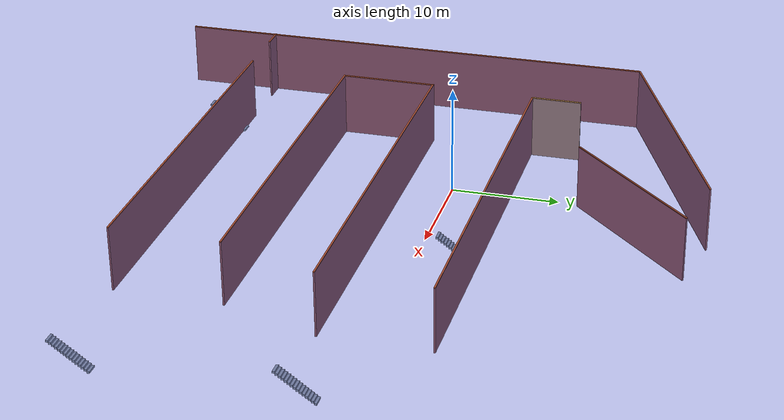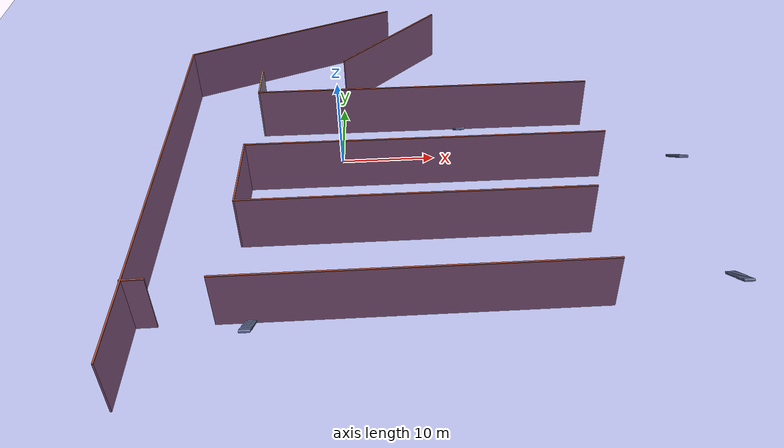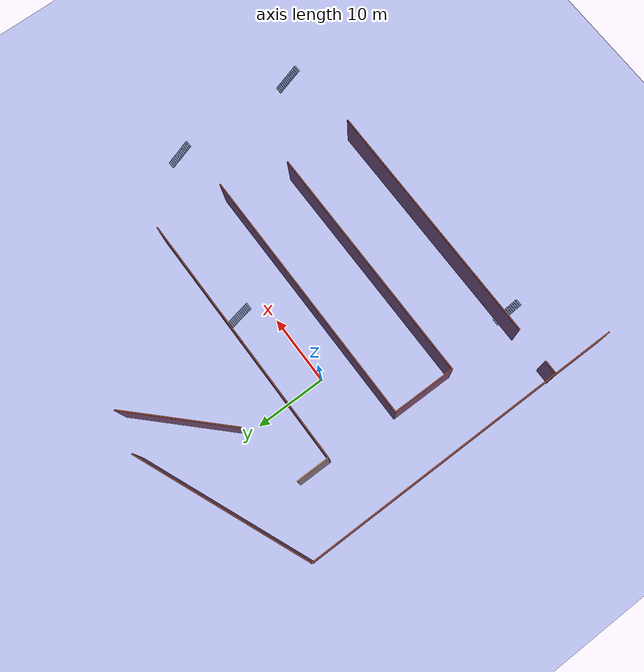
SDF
<sdf version="1.6">
 <world name="vrc_task_1">
  <model name="indoor2">
   <pose>9.73091 -3.78901 0 0 -0 0</pose>
   <link name="Stairs_1">
    <visual name="Stairs_1_Visual_0">
     <pose>-17.3524 -19.1277 0.083333 0 -0 0</pose>
     <geometry><box><size>1 0.233333 0.166667</size></box></geometry>
     <material>
      <script><uri>file://media/materials/scripts/gazebo.material</uri><name>Gazebo/Grey</name></script>
      <ambient>1 1 1 1</ambient>
     </material>
     <meta><layer>0</layer></meta>
    </visual>
    <collision name="Stairs_1_Collision_0">
     <geometry><box><size>1 0.233333 0.166667</size></box></geometry>
     <pose>-17.3524 -19.1277 0.083333 0 -0 0</pose>
    </collision>
    <visual name="Stairs_1_Visual_1">
     <pose>-17.3524 -19.361 0.25 0 -0 0</pose>
     <geometry><box><size>1 0.233333 0.166667</size></box></geometry>
     <material>
      <script><uri>file://media/materials/scripts/gazebo.material</uri><name>Gazebo/Grey</name></script>
      <ambient>1 1 1 1</ambient>
     </material>
     <meta><layer>0</layer></meta>
    </visual>
    <collision name="Stairs_1_Collision_1">
     <geometry><box><size>1 0.233333 0.166667</size></box></geometry>
     <pose>-17.3524 -19.361 0.25 0 -0 0</pose>
    </collision>
    <visual name="Stairs_1_Visual_2">
     <pose>-17.3524 -19.5943 0.416667 0 -0 0</pose>
     <geometry><box><size>1 0.233333 0.166667</size></box></geometry>
     <material>
      <script><uri>file://media/materials/scripts/gazebo.material</uri><name>Gazebo/Grey</name></script>
      <ambient>1 1 1 1</ambient>
     </material>
     <meta><layer>0</layer></meta>
    </visual>
    <collision name="Stairs_1_Collision_2">
     <geometry><box><size>1 0.233333 0.166667</size></box></geometry>
     <pose>-17.3524 -19.5943 0.416667 0 -0 0</pose>
    </collision>
    <visual name="Stairs_1_Visual_3">
     <pose>-17.3524 -19.8277 0.583333 0 -0 0</pose>
     <geometry><box><size>1 0.233333 0.166667</size></box></geometry>
     <material>
      <script><uri>file://media/materials/scripts/gazebo.material</uri><name>Gazebo/Grey</name></script>
      <ambient>1 1 1 1</ambient>
     </material>
     <meta><layer>0</layer></meta>
    </visual>
    <collision name="Stairs_1_Collision_3">
     <geometry><box><size>1 0.233333 0.166667</size></box></geometry>
     <pose>-17.3524 -19.8277 0.583333 0 -0 0</pose>
    </collision>
    <visual name="Stairs_1_Visual_4">
     <pose>-17.3524 -20.061 0.75 0 -0 0</pose>
     <geometry><box><size>1 0.233333 0.166667</size></box></geometry>
     <material>
      <script><uri>file://media/materials/scripts/gazebo.material</uri><name>Gazebo/Grey</name></script>
      <ambient>1 1 1 1</ambient>
     </material>
     <meta><layer>0</layer></meta>
    </visual>
    <collision name="Stairs_1_Collision_4">
     <geometry><box><size>1 0.233333 0.166667</size></box></geometry>
     <pose>-17.3524 -20.061 0.75 0 -0 0</pose>
    </collision>
    <visual name="Stairs_1_Visual_5">
     <pose>-17.3524 -20.2943 0.916667 0 -0 0</pose>
     <geometry><box><size>1 0.233333 0.166667</size></box></geometry>
     <material>
      <script><uri>file://media/materials/scripts/gazebo.material</uri><name>Gazebo/Grey</name></script>
      <ambient>1 1 1 1</ambient>
     </material>
     <meta><layer>0</layer></meta>
    </visual>
    <collision name="Stairs_1_Collision_5">
     <geometry><box><size>1 0.233333 0.166667</size></box></geometry>
     <pose>-17.3524 -20.2943 0.916667 0 -0 0</pose>
    </collision>
    <visual name="Stairs_1_Visual_6">
     <pose>-17.3524 -20.5277 1.08333 0 -0 0</pose>
     <geometry><box><size>1 0.233333 0.166667</size></box></geometry>
     <material>
      <script><uri>file://media/materials/scripts/gazebo.material</uri><name>Gazebo/Grey</name></script>
      <ambient>1 1 1 1</ambient>
     </material>
     <meta><layer>0</layer></meta>
    </visual>
    <collision name="Stairs_1_Collision_6">
     <geometry><box><size>1 0.233333 0.166667</size></box></geometry>
     <pose>-17.3524 -20.5277 1.08333 0 -0 0</pose>
    </collision>
    <visual name="Stairs_1_Visual_7">
     <pose>-17.3524 -20.761 1.25 0 -0 0</pose>
     <geometry><box><size>1 0.233333 0.166667</size></box></geometry>
     <material>
      <script><uri>file://media/materials/scripts/gazebo.material</uri><name>Gazebo/Grey</name></script>
      <ambient>1 1 1 1</ambient>
     </material>
     <meta><layer>0</layer></meta>
    </visual>
    <collision name="Stairs_1_Collision_7">
     <geometry><box><size>1 0.233333 0.166667</size></box></geometry>
     <pose>-17.3524 -20.761 1.25 0 -0 0</pose>
    </collision>
    <visual name="Stairs_1_Visual_8">
     <pose>-17.3524 -20.9943 1.41667 0 -0 0</pose>
     <geometry><box><size>1 0.233333 0.166667</size></box></geometry>
     <material>
      <script><uri>file://media/materials/scripts/gazebo.material</uri><name>Gazebo/Grey</name></script>
      <ambient>1 1 1 1</ambient>
     </material>
     <meta><layer>0</layer></meta>
    </visual>
    <collision name="Stairs_1_Collision_8">
     <geometry><box><size>1 0.233333 0.166667</size></box></geometry>
     <pose>-17.3524 -20.9943 1.41667 0 -0 0</pose>
    </collision>
    <visual name="Stairs_1_Visual_9">
     <pose>-17.3524 -21.2277 1.58333 0 -0 0</pose>
     <geometry><box><size>1 0.233333 0.166667</size></box></geometry>
     <material>
      <script><uri>file://media/materials/scripts/gazebo.material</uri><name>Gazebo/Grey</name></script>
      <ambient>1 1 1 1</ambient>
     </material>
     <meta><layer>0</layer></meta>
    </visual>
    <collision name="Stairs_1_Collision_9">
     <geometry><box><size>1 0.233333 0.166667</size></box></geometry>
     <pose>-17.3524 -21.2277 1.58333 0 -0 0</pose>
    </collision>
    <visual name="Stairs_1_Visual_10">
     <pose>-17.3524 -21.461 1.75 0 -0 0</pose>
     <geometry><box><size>1 0.233333 0.166667</size></box></geometry>
     <material>
      <script><uri>file://media/materials/scripts/gazebo.material</uri><name>Gazebo/Grey</name></script>
      <ambient>1 1 1 1</ambient>
     </material>
     <meta><layer>0</layer></meta>
    </visual>
    <collision name="Stairs_1_Collision_10">
     <geometry><box><size>1 0.233333 0.166667</size></box></geometry>
     <pose>-17.3524 -21.461 1.75 0 -0 0</pose>
    </collision>
    <visual name="Stairs_1_Visual_11">
     <pose>-17.3524 -21.6943 1.91667 0 -0 0</pose>
     <geometry><box><size>1 0.233333 0.166667</size></box></geometry>
     <material>
      <script><uri>file://media/materials/scripts/gazebo.material</uri><name>Gazebo/Grey</name></script>
      <ambient>1 1 1 1</ambient>
     </material>
     <meta><layer>0</layer></meta>
    </visual>
    <collision name="Stairs_1_Collision_11">
     <geometry><box><size>1 0.233333 0.166667</size></box></geometry>
     <pose>-17.3524 -21.6943 1.91667 0 -0 0</pose>
    </collision>
    <visual name="Stairs_1_Visual_12">
     <pose>-17.3524 -21.9277 2.08333 0 -0 0</pose>
     <geometry><box><size>1 0.233333 0.166667</size></box></geometry>
     <material>
      <script><uri>file://media/materials/scripts/gazebo.material</uri><name>Gazebo/Grey</name></script>
      <ambient>1 1 1 1</ambient>
     </material>
     <meta><layer>0</layer></meta>
    </visual>
    <collision name="Stairs_1_Collision_12">
     <geometry><box><size>1 0.233333 0.166667</size></box></geometry>
     <pose>-17.3524 -21.9277 2.08333 0 -0 0</pose>
    </collision>
    <visual name="Stairs_1_Visual_13">
     <pose>-17.3524 -22.161 2.25 0 -0 0</pose>
     <geometry><box><size>1 0.233333 0.166667</size></box></geometry>
     <material>
      <script><uri>file://media/materials/scripts/gazebo.material</uri><name>Gazebo/Grey</name></script>
      <ambient>1 1 1 1</ambient>
     </material>
     <meta><layer>0</layer></meta>
    </visual>
    <collision name="Stairs_1_Collision_13">
     <geometry><box><size>1 0.233333 0.166667</size></box></geometry>
     <pose>-17.3524 -22.161 2.25 0 -0 0</pose>
    </collision>
    <visual name="Stairs_1_Visual_14">
     <pose>-17.3524 -22.3943 2.41667 0 -0 0</pose>
     <geometry><box><size>1 0.233333 0.166667</size></box></geometry>
     <material>
      <script><uri>file://media/materials/scripts/gazebo.material</uri><name>Gazebo/Grey</name></script>
      <ambient>1 1 1 1</ambient>
     </material>
     <meta><layer>0</layer></meta>
    </visual>
    <collision name="Stairs_1_Collision_14">
     <geometry><box><size>1 0.233333 0.166667</size></box></geometry>
     <pose>-17.3524 -22.3943 2.41667 0 -0 0</pose>
    </collision>
   </link>
   <link name="Stairs_2">
    <visual name="Stairs_2_Visual_0">
     <pose>27.1992 -16.0338 0.083333 0 -0 0</pose>
     <geometry><box><size>1 0.233333 0.166667</size></box></geometry>
     <material>
      <script><uri>file://media/materials/scripts/gazebo.material</uri><name>Gazebo/Grey</name></script>
      <ambient>1 1 1 1</ambient>
     </material>
     <meta><layer>0</layer></meta>
    </visual>
    <collision name="Stairs_2_Collision_0">
     <geometry><box><size>1 0.233333 0.166667</size></box></geometry>
     <pose>27.1992 -16.0338 0.083333 0 -0 0</pose>
    </collision>
    <visual name="Stairs_2_Visual_1">
     <pose>27.1992 -16.2671 0.25 0 -0 0</pose>
     <geometry><box><size>1 0.233333 0.166667</size></box></geometry>
     <material>
      <script><uri>file://media/materials/scripts/gazebo.material</uri><name>Gazebo/Grey</name></script>
      <ambient>1 1 1 1</ambient>
     </material>
     <meta><layer>0</layer></meta>
    </visual>
    <collision name="Stairs_2_Collision_1">
     <geometry><box><size>1 0.233333 0.166667</size></box></geometry>
     <pose>27.1992 -16.2671 0.25 0 -0 0</pose>
    </collision>
    <visual name="Stairs_2_Visual_2">
     <pose>27.1992 -16.5005 0.416667 0 -0 0</pose>
     <geometry><box><size>1 0.233333 0.166667</size></box></geometry>
     <material>
      <script><uri>file://media/materials/scripts/gazebo.material</uri><name>Gazebo/Grey</name></script>
      <ambient>1 1 1 1</ambient>
     </material>
     <meta><layer>0</layer></meta>
    </visual>
    <collision name="Stairs_2_Collision_2">
     <geometry><box><size>1 0.233333 0.166667</size></box></geometry>
     <pose>27.1992 -16.5005 0.416667 0 -0 0</pose>
    </collision>
    <visual name="Stairs_2_Visual_3">
     <pose>27.1992 -16.7338 0.583333 0 -0 0</pose>
     <geometry><box><size>1 0.233333 0.166667</size></box></geometry>
     <material>
      <script><uri>file://media/materials/scripts/gazebo.material</uri><name>Gazebo/Grey</name></script>
      <ambient>1 1 1 1</ambient>
     </material>
     <meta><layer>0</layer></meta>
    </visual>
    <collision name="Stairs_2_Collision_3">
     <geometry><box><size>1 0.233333 0.166667</size></box></geometry>
     <pose>27.1992 -16.7338 0.583333 0 -0 0</pose>
    </collision>
    <visual name="Stairs_2_Visual_4">
     <pose>27.1992 -16.9671 0.75 0 -0 0</pose>
     <geometry><box><size>1 0.233333 0.166667</size></box></geometry>
     <material>
      <script><uri>file://media/materials/scripts/gazebo.material</uri><name>Gazebo/Grey</name></script>
      <ambient>1 1 1 1</ambient>
     </material>
     <meta><layer>0</layer></meta>
    </visual>
    <collision name="Stairs_2_Collision_4">
     <geometry><box><size>1 0.233333 0.166667</size></box></geometry>
     <pose>27.1992 -16.9671 0.75 0 -0 0</pose>
    </collision>
    <visual name="Stairs_2_Visual_5">
     <pose>27.1992 -17.2005 0.916667 0 -0 0</pose>
     <geometry><box><size>1 0.233333 0.166667</size></box></geometry>
     <material>
      <script><uri>file://media/materials/scripts/gazebo.material</uri><name>Gazebo/Grey</name></script>
      <ambient>1 1 1 1</ambient>
     </material>
     <meta><layer>0</layer></meta>
    </visual>
    <collision name="Stairs_2_Collision_5">
     <geometry><box><size>1 0.233333 0.166667</size></box></geometry>
     <pose>27.1992 -17.2005 0.916667 0 -0 0</pose>
    </collision>
    <visual name="Stairs_2_Visual_6">
     <pose>27.1992 -17.4338 1.08333 0 -0 0</pose>
     <geometry><box><size>1 0.233333 0.166667</size></box></geometry>
     <material>
      <script><uri>file://media/materials/scripts/gazebo.material</uri><name>Gazebo/Grey</name></script>
      <ambient>1 1 1 1</ambient>
     </material>
     <meta><layer>0</layer></meta>
    </visual>
    <collision name="Stairs_2_Collision_6">
     <geometry><box><size>1 0.233333 0.166667</size></box></geometry>
     <pose>27.1992 -17.4338 1.08333 0 -0 0</pose>
    </collision>
    <visual name="Stairs_2_Visual_7">
     <pose>27.1992 -17.6671 1.25 0 -0 0</pose>
     <geometry><box><size>1 0.233333 0.166667</size></box></geometry>
     <material>
      <script><uri>file://media/materials/scripts/gazebo.material</uri><name>Gazebo/Grey</name></script>
      <ambient>1 1 1 1</ambient>
     </material>
     <meta><layer>0</layer></meta>
    </visual>
    <collision name="Stairs_2_Collision_7">
     <geometry><box><size>1 0.233333 0.166667</size></box></geometry>
     <pose>27.1992 -17.6671 1.25 0 -0 0</pose>
    </collision>
    <visual name="Stairs_2_Visual_8">
     <pose>27.1992 -17.9005 1.41667 0 -0 0</pose>
     <geometry><box><size>1 0.233333 0.166667</size></box></geometry>
     <material>
      <script><uri>file://media/materials/scripts/gazebo.material</uri><name>Gazebo/Grey</name></script>
      <ambient>1 1 1 1</ambient>
     </material>
     <meta><layer>0</layer></meta>
    </visual>
    <collision name="Stairs_2_Collision_8">
     <geometry><box><size>1 0.233333 0.166667</size></box></geometry>
     <pose>27.1992 -17.9005 1.41667 0 -0 0</pose>
    </collision>
    <visual name="Stairs_2_Visual_9">
     <pose>27.1992 -18.1338 1.58333 0 -0 0</pose>
     <geometry><box><size>1 0.233333 0.166667</size></box></geometry>
     <material>
      <script><uri>file://media/materials/scripts/gazebo.material</uri><name>Gazebo/Grey</name></script>
      <ambient>1 1 1 1</ambient>
     </material>
     <meta><layer>0</layer></meta>
    </visual>
    <collision name="Stairs_2_Collision_9">
     <geometry><box><size>1 0.233333 0.166667</size></box></geometry>
     <pose>27.1992 -18.1338 1.58333 0 -0 0</pose>
    </collision>
    <visual name="Stairs_2_Visual_10">
     <pose>27.1992 -18.3671 1.75 0 -0 0</pose>
     <geometry><box><size>1 0.233333 0.166667</size></box></geometry>
     <material>
      <script><uri>file://media/materials/scripts/gazebo.material</uri><name>Gazebo/Grey</name></script>
      <ambient>1 1 1 1</ambient>
     </material>
     <meta><layer>0</layer></meta>
    </visual>
    <collision name="Stairs_2_Collision_10">
     <geometry><box><size>1 0.233333 0.166667</size></box></geometry>
     <pose>27.1992 -18.3671 1.75 0 -0 0</pose>
    </collision>
    <visual name="Stairs_2_Visual_11">
     <pose>27.1992 -18.6005 1.91667 0 -0 0</pose>
     <geometry><box><size>1 0.233333 0.166667</size></box></geometry>
     <material>
      <script><uri>file://media/materials/scripts/gazebo.material</uri><name>Gazebo/Grey</name></script>
      <ambient>1 1 1 1</ambient>
     </material>
     <meta><layer>0</layer></meta>
    </visual>
    <collision name="Stairs_2_Collision_11">
     <geometry><box><size>1 0.233333 0.166667</size></box></geometry>
     <pose>27.1992 -18.6005 1.91667 0 -0 0</pose>
    </collision>
    <visual name="Stairs_2_Visual_12">
     <pose>27.1992 -18.8338 2.08333 0 -0 0</pose>
     <geometry><box><size>1 0.233333 0.166667</size></box></geometry>
     <material>
      <script><uri>file://media/materials/scripts/gazebo.material</uri><name>Gazebo/Grey</name></script>
      <ambient>1 1 1 1</ambient>
     </material>
     <meta><layer>0</layer></meta>
    </visual>
    <collision name="Stairs_2_Collision_12">
     <geometry><box><size>1 0.233333 0.166667</size></box></geometry>
     <pose>27.1992 -18.8338 2.08333 0 -0 0</pose>
    </collision>
    <visual name="Stairs_2_Visual_13">
     <pose>27.1992 -19.0671 2.25 0 -0 0</pose>
     <geometry><box><size>1 0.233333 0.166667</size></box></geometry>
     <material>
      <script><uri>file://media/materials/scripts/gazebo.material</uri><name>Gazebo/Grey</name></script>
      <ambient>1 1 1 1</ambient>
     </material>
     <meta><layer>0</layer></meta>
    </visual>
    <collision name="Stairs_2_Collision_13">
     <geometry><box><size>1 0.233333 0.166667</size></box></geometry>
     <pose>27.1992 -19.0671 2.25 0 -0 0</pose>
    </collision>
    <visual name="Stairs_2_Visual_14">
     <pose>27.1992 -19.3005 2.41667 0 -0 0</pose>
     <geometry><box><size>1 0.233333 0.166667</size></box></geometry>
     <material>
      <script><uri>file://media/materials/scripts/gazebo.material</uri><name>Gazebo/Grey</name></script>
      <ambient>1 1 1 1</ambient>
     </material>
     <meta><layer>0</layer></meta>
    </visual>
    <collision name="Stairs_2_Collision_14">
     <geometry><box><size>1 0.233333 0.166667</size></box></geometry>
     <pose>27.1992 -19.3005 2.41667 0 -0 0</pose>
    </collision>
   </link>
   <link name="Stairs_3">
    <visual name="Stairs_3_Visual_0">
     <pose>26.9517 2.40562 0.083333 0 -0 0</pose>
     <geometry><box><size>1 0.233333 0.166667</size></box></geometry>
     <material>
      <script><uri>file://media/materials/scripts/gazebo.material</uri><name>Gazebo/Grey</name></script>
      <ambient>1 1 1 1</ambient>
     </material>
     <meta><layer>0</layer></meta>
    </visual>
    <collision name="Stairs_3_Collision_0">
     <geometry><box><size>1 0.233333 0.166667</size></box></geometry>
     <pose>26.9517 2.40562 0.083333 0 -0 0</pose>
    </collision>
    <visual name="Stairs_3_Visual_1">
     <pose>26.9517 2.17229 0.25 0 -0 0</pose>
     <geometry><box><size>1 0.233333 0.166667</size></box></geometry>
     <material>
      <script><uri>file://media/materials/scripts/gazebo.material</uri><name>Gazebo/Grey</name></script>
      <ambient>1 1 1 1</ambient>
     </material>
     <meta><layer>0</layer></meta>
    </visual>
    <collision name="Stairs_3_Collision_1">
     <geometry><box><size>1 0.233333 0.166667</size></box></geometry>
     <pose>26.9517 2.17229 0.25 0 -0 0</pose>
    </collision>
    <visual name="Stairs_3_Visual_2">
     <pose>26.9517 1.93895 0.416667 0 -0 0</pose>
     <geometry><box><size>1 0.233333 0.166667</size></box></geometry>
     <material>
      <script><uri>file://media/materials/scripts/gazebo.material</uri><name>Gazebo/Grey</name></script>
      <ambient>1 1 1 1</ambient>
     </material>
     <meta><layer>0</layer></meta>
    </visual>
    <collision name="Stairs_3_Collision_2">
     <geometry><box><size>1 0.233333 0.166667</size></box></geometry>
     <pose>26.9517 1.93895 0.416667 0 -0 0</pose>
    </collision>
    <visual name="Stairs_3_Visual_3">
     <pose>26.9517 1.70562 0.583333 0 -0 0</pose>
     <geometry><box><size>1 0.233333 0.166667</size></box></geometry>
     <material>
      <script><uri>file://media/materials/scripts/gazebo.material</uri><name>Gazebo/Grey</name></script>
      <ambient>1 1 1 1</ambient>
     </material>
     <meta><layer>0</layer></meta>
    </visual>
    <collision name="Stairs_3_Collision_3">
     <geometry><box><size>1 0.233333 0.166667</size></box></geometry>
     <pose>26.9517 1.70562 0.583333 0 -0 0</pose>
    </collision>
    <visual name="Stairs_3_Visual_4">
     <pose>26.9517 1.47229 0.75 0 -0 0</pose>
     <geometry><box><size>1 0.233333 0.166667</size></box></geometry>
     <material>
      <script><uri>file://media/materials/scripts/gazebo.material</uri><name>Gazebo/Grey</name></script>
      <ambient>1 1 1 1</ambient>
     </material>
     <meta><layer>0</layer></meta>
    </visual>
    <collision name="Stairs_3_Collision_4">
     <geometry><box><size>1 0.233333 0.166667</size></box></geometry>
     <pose>26.9517 1.47229 0.75 0 -0 0</pose>
    </collision>
    <visual name="Stairs_3_Visual_5">
     <pose>26.9517 1.23895 0.916667 0 -0 0</pose>
     <geometry><box><size>1 0.233333 0.166667</size></box></geometry>
     <material>
      <script><uri>file://media/materials/scripts/gazebo.material</uri><name>Gazebo/Grey</name></script>
      <ambient>1 1 1 1</ambient>
     </material>
     <meta><layer>0</layer></meta>
    </visual>
    <collision name="Stairs_3_Collision_5">
     <geometry><box><size>1 0.233333 0.166667</size></box></geometry>
     <pose>26.9517 1.23895 0.916667 0 -0 0</pose>
    </collision>
    <visual name="Stairs_3_Visual_6">
     <pose>26.9517 1.00562 1.08333 0 -0 0</pose>
     <geometry><box><size>1 0.233333 0.166667</size></box></geometry>
     <material>
      <script><uri>file://media/materials/scripts/gazebo.material</uri><name>Gazebo/Grey</name></script>
      <ambient>1 1 1 1</ambient>
     </material>
     <meta><layer>0</layer></meta>
    </visual>
    <collision name="Stairs_3_Collision_6">
     <geometry><box><size>1 0.233333 0.166667</size></box></geometry>
     <pose>26.9517 1.00562 1.08333 0 -0 0</pose>
    </collision>
    <visual name="Stairs_3_Visual_7">
     <pose>26.9517 0.772287 1.25 0 -0 0</pose>
     <geometry><box><size>1 0.233333 0.166667</size></box></geometry>
     <material>
      <script><uri>file://media/materials/scripts/gazebo.material</uri><name>Gazebo/Grey</name></script>
      <ambient>1 1 1 1</ambient>
     </material>
     <meta><layer>0</layer></meta>
    </visual>
    <collision name="Stairs_3_Collision_7">
     <geometry><box><size>1 0.233333 0.166667</size></box></geometry>
     <pose>26.9517 0.772287 1.25 0 -0 0</pose>
    </collision>
    <visual name="Stairs_3_Visual_8">
     <pose>26.9517 0.538954 1.41667 0 -0 0</pose>
     <geometry><box><size>1 0.233333 0.166667</size></box></geometry>
     <material>
      <script><uri>file://media/materials/scripts/gazebo.material</uri><name>Gazebo/Grey</name></script>
      <ambient>1 1 1 1</ambient>
     </material>
     <meta><layer>0</layer></meta>
    </visual>
    <collision name="Stairs_3_Collision_8">
     <geometry><box><size>1 0.233333 0.166667</size></box></geometry>
     <pose>26.9517 0.538954 1.41667 0 -0 0</pose>
    </collision>
    <visual name="Stairs_3_Visual_9">
     <pose>26.9517 0.30562 1.58333 0 -0 0</pose>
     <geometry><box><size>1 0.233333 0.166667</size></box></geometry>
     <material>
      <script><uri>file://media/materials/scripts/gazebo.material</uri><name>Gazebo/Grey</name></script>
      <ambient>1 1 1 1</ambient>
     </material>
     <meta><layer>0</layer></meta>
    </visual>
    <collision name="Stairs_3_Collision_9">
     <geometry><box><size>1 0.233333 0.166667</size></box></geometry>
     <pose>26.9517 0.30562 1.58333 0 -0 0</pose>
    </collision>
    <visual name="Stairs_3_Visual_10">
     <pose>26.9517 0.072287 1.75 0 -0 0</pose>
     <geometry><box><size>1 0.233333 0.166667</size></box></geometry>
     <material>
      <script><uri>file://media/materials/scripts/gazebo.material</uri><name>Gazebo/Grey</name></script>
      <ambient>1 1 1 1</ambient>
     </material>
     <meta><layer>0</layer></meta>
    </visual>
    <collision name="Stairs_3_Collision_10">
     <geometry><box><size>1 0.233333 0.166667</size></box></geometry>
     <pose>26.9517 0.072287 1.75 0 -0 0</pose>
    </collision>
    <visual name="Stairs_3_Visual_11">
     <pose>26.9517 -0.161047 1.91667 0 -0 0</pose>
     <geometry><box><size>1 0.233333 0.166667</size></box></geometry>
     <material>
      <script><uri>file://media/materials/scripts/gazebo.material</uri><name>Gazebo/Grey</name></script>
      <ambient>1 1 1 1</ambient>
     </material>
     <meta><layer>0</layer></meta>
    </visual>
    <collision name="Stairs_3_Collision_11">
     <geometry><box><size>1 0.233333 0.166667</size></box></geometry>
     <pose>26.9517 -0.161047 1.91667 0 -0 0</pose>
    </collision>
    <visual name="Stairs_3_Visual_12">
     <pose>26.9517 -0.39438 2.08333 0 -0 0</pose>
     <geometry><box><size>1 0.233333 0.166667</size></box></geometry>
     <material>
      <script><uri>file://media/materials/scripts/gazebo.material</uri><name>Gazebo/Grey</name></script>
      <ambient>1 1 1 1</ambient>
     </material>
     <meta><layer>0</layer></meta>
    </visual>
    <collision name="Stairs_3_Collision_12">
     <geometry><box><size>1 0.233333 0.166667</size></box></geometry>
     <pose>26.9517 -0.39438 2.08333 0 -0 0</pose>
    </collision>
    <visual name="Stairs_3_Visual_13">
     <pose>26.9517 -0.627713 2.25 0 -0 0</pose>
     <geometry><box><size>1 0.233333 0.166667</size></box></geometry>
     <material>
      <script><uri>file://media/materials/scripts/gazebo.material</uri><name>Gazebo/Grey</name></script>
      <ambient>1 1 1 1</ambient>
     </material>
     <meta><layer>0</layer></meta>
    </visual>
    <collision name="Stairs_3_Collision_13">
     <geometry><box><size>1 0.233333 0.166667</size></box></geometry>
     <pose>26.9517 -0.627713 2.25 0 -0 0</pose>
    </collision>
    <visual name="Stairs_3_Visual_14">
     <pose>26.9517 -0.861046 2.41667 0 -0 0</pose>
     <geometry><box><size>1 0.233333 0.166667</size></box></geometry>
     <material>
      <script><uri>file://media/materials/scripts/gazebo.material</uri><name>Gazebo/Grey</name></script>
      <ambient>1 1 1 1</ambient>
     </material>
     <meta><layer>0</layer></meta>
    </visual>
    <collision name="Stairs_3_Collision_14">
     <geometry><box><size>1 0.233333 0.166667</size></box></geometry>
     <pose>26.9517 -0.861046 2.41667 0 -0 0</pose>
    </collision>
   </link>
   <link name="Stairs_4">
    <visual name="Stairs_4_Visual_0">
     <pose>3.43833 9.08836 0.083333 0 -0 0</pose>
     <geometry><box><size>1 0.233333 0.166667</size></box></geometry>
     <material>
      <script><uri>file://media/materials/scripts/gazebo.material</uri><name>Gazebo/Grey</name></script>
      <ambient>1 1 1 1</ambient>
     </material>
     <meta><layer>0</layer></meta>
    </visual>
    <collision name="Stairs_4_Collision_0">
     <geometry><box><size>1 0.233333 0.166667</size></box></geometry>
     <pose>3.43833 9.08836 0.083333 0 -0 0</pose>
    </collision>
    <visual name="Stairs_4_Visual_1">
     <pose>3.43833 8.85503 0.25 0 -0 0</pose>
     <geometry><box><size>1 0.233333 0.166667</size></box></geometry>
     <material>
      <script><uri>file://media/materials/scripts/gazebo.material</uri><name>Gazebo/Grey</name></script>
      <ambient>1 1 1 1</ambient>
     </material>
     <meta><layer>0</layer></meta>
    </visual>
    <collision name="Stairs_4_Collision_1">
     <geometry><box><size>1 0.233333 0.166667</size></box></geometry>
     <pose>3.43833 8.85503 0.25 0 -0 0</pose>
    </collision>
    <visual name="Stairs_4_Visual_2">
     <pose>3.43833 8.6217 0.416667 0 -0 0</pose>
     <geometry><box><size>1 0.233333 0.166667</size></box></geometry>
     <material>
      <script><uri>file://media/materials/scripts/gazebo.material</uri><name>Gazebo/Grey</name></script>
      <ambient>1 1 1 1</ambient>
     </material>
     <meta><layer>0</layer></meta>
    </visual>
    <collision name="Stairs_4_Collision_2">
     <geometry><box><size>1 0.233333 0.166667</size></box></geometry>
     <pose>3.43833 8.6217 0.416667 0 -0 0</pose>
    </collision>
    <visual name="Stairs_4_Visual_3">
     <pose>3.43833 8.38837 0.583333 0 -0 0</pose>
     <geometry><box><size>1 0.233333 0.166667</size></box></geometry>
     <material>
      <script><uri>file://media/materials/scripts/gazebo.material</uri><name>Gazebo/Grey</name></script>
      <ambient>1 1 1 1</ambient>
     </material>
     <meta><layer>0</layer></meta>
    </visual>
    <collision name="Stairs_4_Collision_3">
     <geometry><box><size>1 0.233333 0.166667</size></box></geometry>
     <pose>3.43833 8.38837 0.583333 0 -0 0</pose>
    </collision>
    <visual name="Stairs_4_Visual_4">
     <pose>3.43833 8.15503 0.75 0 -0 0</pose>
     <geometry><box><size>1 0.233333 0.166667</size></box></geometry>
     <material>
      <script><uri>file://media/materials/scripts/gazebo.material</uri><name>Gazebo/Grey</name></script>
      <ambient>1 1 1 1</ambient>
     </material>
     <meta><layer>0</layer></meta>
    </visual>
    <collision name="Stairs_4_Collision_4">
     <geometry><box><size>1 0.233333 0.166667</size></box></geometry>
     <pose>3.43833 8.15503 0.75 0 -0 0</pose>
    </collision>
    <visual name="Stairs_4_Visual_5">
     <pose>3.43833 7.9217 0.916667 0 -0 0</pose>
     <geometry><box><size>1 0.233333 0.166667</size></box></geometry>
     <material>
      <script><uri>file://media/materials/scripts/gazebo.material</uri><name>Gazebo/Grey</name></script>
      <ambient>1 1 1 1</ambient>
     </material>
     <meta><layer>0</layer></meta>
    </visual>
    <collision name="Stairs_4_Collision_5">
     <geometry><box><size>1 0.233333 0.166667</size></box></geometry>
     <pose>3.43833 7.9217 0.916667 0 -0 0</pose>
    </collision>
    <visual name="Stairs_4_Visual_6">
     <pose>3.43833 7.68837 1.08333 0 -0 0</pose>
     <geometry><box><size>1 0.233333 0.166667</size></box></geometry>
     <material>
      <script><uri>file://media/materials/scripts/gazebo.material</uri><name>Gazebo/Grey</name></script>
      <ambient>1 1 1 1</ambient>
     </material>
     <meta><layer>0</layer></meta>
    </visual>
    <collision name="Stairs_4_Collision_6">
     <geometry><box><size>1 0.233333 0.166667</size></box></geometry>
     <pose>3.43833 7.68837 1.08333 0 -0 0</pose>
    </collision>
    <visual name="Stairs_4_Visual_7">
     <pose>3.43833 7.45503 1.25 0 -0 0</pose>
     <geometry><box><size>1 0.233333 0.166667</size></box></geometry>
     <material>
      <script><uri>file://media/materials/scripts/gazebo.material</uri><name>Gazebo/Grey</name></script>
      <ambient>1 1 1 1</ambient>
     </material>
     <meta><layer>0</layer></meta>
    </visual>
    <collision name="Stairs_4_Collision_7">
     <geometry><box><size>1 0.233333 0.166667</size></box></geometry>
     <pose>3.43833 7.45503 1.25 0 -0 0</pose>
    </collision>
    <visual name="Stairs_4_Visual_8">
     <pose>3.43833 7.2217 1.41667 0 -0 0</pose>
     <geometry><box><size>1 0.233333 0.166667</size></box></geometry>
     <material>
      <script><uri>file://media/materials/scripts/gazebo.material</uri><name>Gazebo/Grey</name></script>
      <ambient>1 1 1 1</ambient>
     </material>
     <meta><layer>0</layer></meta>
    </visual>
    <collision name="Stairs_4_Collision_8">
     <geometry><box><size>1 0.233333 0.166667</size></box></geometry>
     <pose>3.43833 7.2217 1.41667 0 -0 0</pose>
    </collision>
    <visual name="Stairs_4_Visual_9">
     <pose>3.43833 6.98836 1.58333 0 -0 0</pose>
     <geometry><box><size>1 0.233333 0.166667</size></box></geometry>
     <material>
      <script><uri>file://media/materials/scripts/gazebo.material</uri><name>Gazebo/Grey</name></script>
      <ambient>1 1 1 1</ambient>
     </material>
     <meta><layer>0</layer></meta>
    </visual>
    <collision name="Stairs_4_Collision_9">
     <geometry><box><size>1 0.233333 0.166667</size></box></geometry>
     <pose>3.43833 6.98836 1.58333 0 -0 0</pose>
    </collision>
    <visual name="Stairs_4_Visual_10">
     <pose>3.43833 6.75503 1.75 0 -0 0</pose>
     <geometry><box><size>1 0.233333 0.166667</size></box></geometry>
     <material>
      <script><uri>file://media/materials/scripts/gazebo.material</uri><name>Gazebo/Grey</name></script>
      <ambient>1 1 1 1</ambient>
     </material>
     <meta><layer>0</layer></meta>
    </visual>
    <collision name="Stairs_4_Collision_10">
     <geometry><box><size>1 0.233333 0.166667</size></box></geometry>
     <pose>3.43833 6.75503 1.75 0 -0 0</pose>
    </collision>
    <visual name="Stairs_4_Visual_11">
     <pose>3.43833 6.5217 1.91667 0 -0 0</pose>
     <geometry><box><size>1 0.233333 0.166667</size></box></geometry>
     <material>
      <script><uri>file://media/materials/scripts/gazebo.material</uri><name>Gazebo/Grey</name></script>
      <ambient>1 1 1 1</ambient>
     </material>
     <meta><layer>0</layer></meta>
    </visual>
    <collision name="Stairs_4_Collision_11">
     <geometry><box><size>1 0.233333 0.166667</size></box></geometry>
     <pose>3.43833 6.5217 1.91667 0 -0 0</pose>
    </collision>
    <visual name="Stairs_4_Visual_12">
     <pose>3.43833 6.28836 2.08333 0 -0 0</pose>
     <geometry><box><size>1 0.233333 0.166667</size></box></geometry>
     <material>
      <script><uri>file://media/materials/scripts/gazebo.material</uri><name>Gazebo/Grey</name></script>
      <ambient>1 1 1 1</ambient>
     </material>
     <meta><layer>0</layer></meta>
    </visual>
    <collision name="Stairs_4_Collision_12">
     <geometry><box><size>1 0.233333 0.166667</size></box></geometry>
     <pose>3.43833 6.28836 2.08333 0 -0 0</pose>
    </collision>
    <visual name="Stairs_4_Visual_13">
     <pose>3.43833 6.05503 2.25 0 -0 0</pose>
     <geometry><box><size>1 0.233333 0.166667</size></box></geometry>
     <material>
      <script><uri>file://media/materials/scripts/gazebo.material</uri><name>Gazebo/Grey</name></script>
      <ambient>1 1 1 1</ambient>
     </material>
     <meta><layer>0</layer></meta>
    </visual>
    <collision name="Stairs_4_Collision_13">
     <geometry><box><size>1 0.233333 0.166667</size></box></geometry>
     <pose>3.43833 6.05503 2.25 0 -0 0</pose>
    </collision>
    <visual name="Stairs_4_Visual_14">
     <pose>3.43833 5.8217 2.41667 0 -0 0</pose>
     <geometry><box><size>1 0.233333 0.166667</size></box></geometry>
     <material>
      <script><uri>file://media/materials/scripts/gazebo.material</uri><name>Gazebo/Grey</name></script>
      <ambient>1 1 1 1</ambient>
     </material>
     <meta><layer>0</layer></meta>
    </visual>
    <collision name="Stairs_4_Collision_14">
     <geometry><box><size>1 0.233333 0.166667</size></box></geometry>
     <pose>3.43833 5.8217 2.41667 0 -0 0</pose>
    </collision>
   </link>
   <link name="Wall_0">
    <collision name="Wall_0_Collision">
     <geometry><box><size>46.25 0.15 6</size></box></geometry>
     <pose>0 0 3 0 -0 0</pose>
    </collision>
    <visual name="Wall_0_Visual">
     <pose>0 0 3 0 -0 0</pose>
     <geometry><box><size>46.25 0.15 6</size></box></geometry>
     <material>
      <script><uri>file://media/materials/scripts/gazebo.material</uri><name>Gazebo/Bricks</name></script>
      <ambient>1 1 1 1</ambient>
     </material>
     <meta><layer>0</layer></meta>
    </visual>
    <pose>-27.5402 -4.8875 0 0 -0 -1.5708</pose>
   </link>
   <link name="Wall_10">
    <collision name="Wall_10_Collision">
     <geometry><box><size>34.75 0.15 6</size></box></geometry>
     <pose>0 0 3 0 -0 0</pose>
    </collision>
    <visual name="Wall_10_Visual">
     <pose>0 0 3 0 -0 0</pose>
     <geometry><box><size>34.75 0.15 6</size></box></geometry>
     <material>
      <script><uri>file://media/materials/scripts/gazebo.material</uri><name>Gazebo/Bricks</name></script>
      <ambient>1 1 1 1</ambient>
     </material>
     <meta><layer>0</layer></meta>
    </visual>
    <pose>-2.0742 -9.4255 0 0 -0 3.14159</pose>
   </link>
   <link name="Wall_11">
    <collision name="Wall_11_Collision">
     <geometry><box><size>9 0.15 6</size></box></geometry>
     <pose>0 0 3 0 -0 0</pose>
    </collision>
    <visual name="Wall_11_Visual">
     <pose>0 0 3 0 -0 0</pose>
     <geometry><box><size>9 0.15 6</size></box></geometry>
     <material>
      <script><uri>file://media/materials/scripts/gazebo.material</uri><name>Gazebo/Bricks</name></script>
      <ambient>1 1 1 1</ambient>
     </material>
     <meta><layer>0</layer></meta>
    </visual>
    <pose>-19.3742 -5.0005 0 0 -0 1.5708</pose>
   </link>
   <link name="Wall_12">
    <collision name="Wall_12_Collision">
     <geometry><box><size>37.5 0.15 6</size></box></geometry>
     <pose>0 0 3 0 -0 0</pose>
    </collision>
    <visual name="Wall_12_Visual">
     <pose>0 0 3 0 -0 0</pose>
     <geometry><box><size>37.5 0.15 6</size></box></geometry>
     <material>
      <script><uri>file://media/materials/scripts/gazebo.material</uri><name>Gazebo/Bricks</name></script>
      <ambient>1 1 1 1</ambient>
     </material>
     <meta><layer>0</layer></meta>
    </visual>
    <pose>-0.6992 -0.575497 0 0 -0 0</pose>
   </link>
   <link name="Wall_14">
    <collision name="Wall_14_Collision">
     <geometry><box><size>37 0.15 6</size></box></geometry>
     <pose>0 0 3 0 -0 0</pose>
    </collision>
    <visual name="Wall_14_Visual">
     <pose>0 0 3 0 -0 0</pose>
     <geometry><box><size>37 0.15 6</size></box></geometry>
     <material>
      <script><uri>file://media/materials/scripts/gazebo.material</uri><name>Gazebo/Bricks</name></script>
      <ambient>1 1 1 1</ambient>
     </material>
     <meta><layer>0</layer></meta>
    </visual>
    <pose>-0.4492 9.2745 0 0 -0 3.14159</pose>
   </link>
   <link name="Wall_15">
    <collision name="Wall_15_Collision">
     <geometry><box><size>4.75 0.15 6</size></box></geometry>
     <pose>0 0 3 0 -0 0</pose>
    </collision>
    <visual name="Wall_15_Visual">
     <pose>0 0 3 0 -0 0</pose>
     <geometry><box><size>4.75 0.15 6</size></box></geometry>
     <material>
      <script><uri>file://media/materials/scripts/gazebo.material</uri><name>Gazebo/Wood</name></script>
      <ambient>1 1 1 1</ambient>
     </material>
     <meta><layer>0</layer></meta>
    </visual>
    <pose>-18.8742 11.5745 0 0 -0 1.5708</pose>
   </link>
   <link name="Wall_17">
    <collision name="Wall_17_Collision">
     <geometry><box><size>15.75 0.15 6</size></box></geometry>
     <pose>0 0 3 0 -0 0</pose>
    </collision>
    <visual name="Wall_17_Visual">
     <pose>0 0 3 0 -0 0</pose>
     <geometry><box><size>15.75 0.15 6</size></box></geometry>
     <material>
      <script><uri>file://media/materials/scripts/gazebo.material</uri><name>Gazebo/Bricks</name></script>
      <ambient>1 1 1 1</ambient>
     </material>
     <meta><layer>0</layer></meta>
    </visual>
    <pose>-3.9337 21.1215 0 0 -0 -2.35624</pose>
   </link>
   <link name="Wall_4">
    <collision name="Wall_4_Collision">
     <geometry><box><size>25.4725 0.15 6</size></box></geometry>
     <pose>0 0 3 0 -0 0</pose>
    </collision>
    <visual name="Wall_4_Visual">
     <pose>0 0 3 0 -0 0</pose>
     <geometry><box><size>25.4725 0.15 6</size></box></geometry>
     <material>
      <script><uri>file://media/materials/scripts/gazebo.material</uri><name>Gazebo/Bricks</name></script>
      <ambient>1 1 1 1</ambient>
     </material>
     <meta><layer>0</layer></meta>
    </visual>
    <pose>-15.8552 23.0385 0 0 -0 -2.74627</pose>
   </link>
   <link name="Wall_8">
    <pose>-6.1992 -19.2755 0 0 -0 0</pose>
    <visual name="Wall_8_Visual_0">
     <pose>-20.4255 0 3 0 -0 0</pose>
     <geometry><box><size>2.14891 0.15 6</size></box></geometry>
     <material>
      <script><uri>file://media/materials/scripts/gazebo.material</uri><name>Gazebo/Bricks</name></script>
      <ambient>1 1 1 1</ambient>
     </material>
     <meta><layer>0</layer></meta>
    </visual>
    <collision name="Wall_8_Collision_0">
     <geometry><box><size>2.14891 0.15 6</size></box></geometry>
     <pose>-20.4255 0 3 0 -0 0</pose>
    </collision>
    <visual name="Wall_8_Visual_1">
     <pose>3.57445 0 3 0 -0 0</pose>
     <geometry><box><size>35.8511 0.15 6</size></box></geometry>
     <material>
      <script><uri>file://media/materials/scripts/gazebo.material</uri><name>Gazebo/Bricks</name></script>
      <ambient>1 1 1 1</ambient>
     </material>
     <meta><layer>0</layer></meta>
    </visual>
    <collision name="Wall_8_Collision_1">
     <geometry><box><size>35.8511 0.15 6</size></box></geometry>
     <pose>3.57445 0 3 0 -0 0</pose>
    </collision>
   </link>
   <static>1</static>
  </model>
  <model name="ground_plane">
   <static>1</static>
   <link name="link">
    <collision name="collision">
     <geometry><plane><normal>0 0 1</normal><size>100 100</size></plane></geometry>
     <surface>
      <contact><collide_bitmask>65535</collide_bitmask></contact>
      <friction><ode><mu>100</mu><mu2>50</mu2></ode></friction>
     </surface>
    </collision>
    <visual name="visual">
     <cast_shadows>0</cast_shadows>
     <geometry><plane><normal>0 0 1</normal><size>100 100</size></plane></geometry>
     <material>
      <script><uri>file://media/materials/scripts/gazebo.material</uri><name>Gazebo/BlueTransparent</name></script>
     </material>
    </visual>
   </link>
   <pose>6.40711 -7.3289 6 0 -0 0</pose>
  </model>
 </world>
</sdf>
